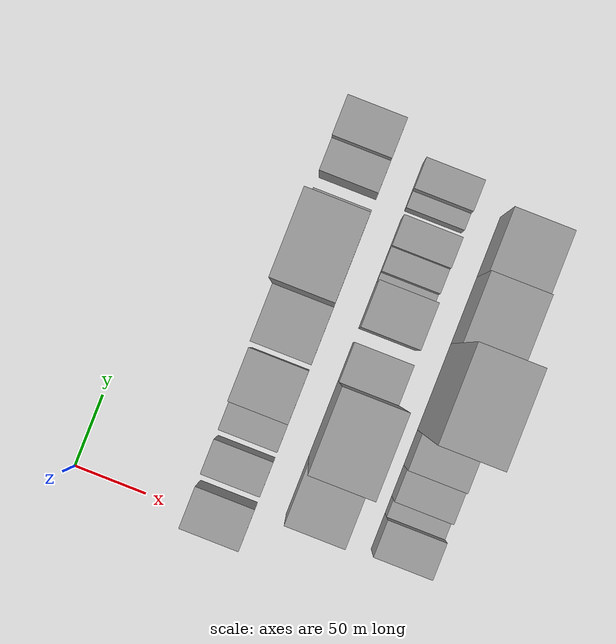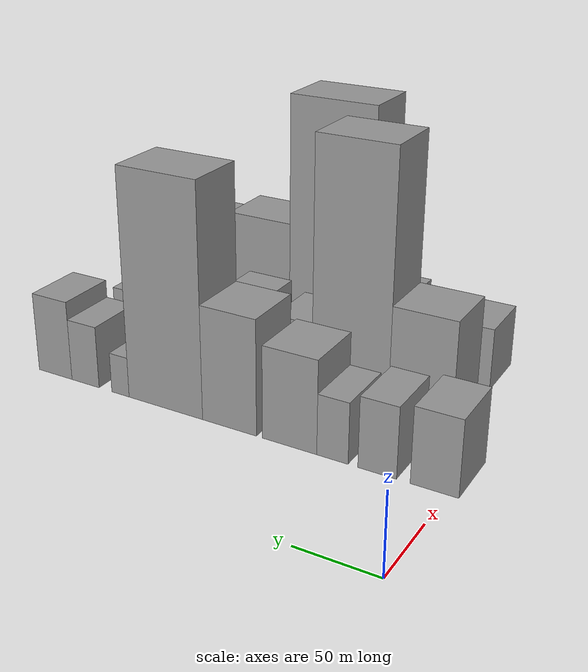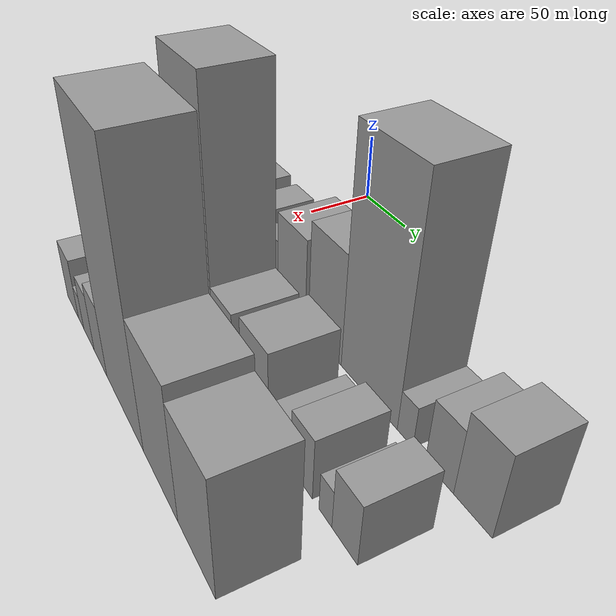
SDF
<sdf version="1.6">
 <world name="default">
  <model name="building_15">
   <static>1</static>
   <pose>100.0000 7.3285 0 0.000000 0.000000 0.000000</pose>
   <link name="link">
    <pose>0 0 24.00 0 0 0</pose>
    <collision name="collision"><geometry><box><size>40.0000 28.1079 48.0000</size></box></geometry></collision>
    <visual name="visual">
     <cast_shadows>0</cast_shadows>
     <geometry><box><size>40.0000 28.1079 48.0000</size></box></geometry>
     <material>
      <script>
       <uri>model://grey_wall/materials/scripts</uri>
       <uri>model://grey_wall/materials/textures</uri>
       <name>vrc/grey_wall</name>
      </script>
     </material>
    </visual>
   </link>
  </model>
  <model name="building_16">
   <static>1</static>
   <pose>100.0000 41.1134 0 0.000000 0.000000 0.000000</pose>
   <link name="link">
    <pose>0 0 22.50 0 0 0</pose>
    <collision name="collision"><geometry><box><size>40.0000 23.4620 45.0000</size></box></geometry></collision>
    <visual name="visual">
     <cast_shadows>0</cast_shadows>
     <geometry><box><size>40.0000 23.4620 45.0000</size></box></geometry>
     <material>
      <script>
       <uri>model://grey_wall/materials/scripts</uri>
       <uri>model://grey_wall/materials/textures</uri>
       <name>vrc/grey_wall</name>
      </script>
     </material>
    </visual>
   </link>
  </model>
  <model name="building_17">
   <static>1</static>
   <pose>100.0000 68.7270 0 0.000000 0.000000 0.000000</pose>
   <link name="link">
    <pose>0 0 19.50 0 0 0</pose>
    <collision name="collision"><geometry><box><size>40.0000 19.7653 39.0000</size></box></geometry></collision>
    <visual name="visual">
     <cast_shadows>0</cast_shadows>
     <geometry><box><size>40.0000 19.7653 39.0000</size></box></geometry>
     <material>
      <script>
       <uri>model://grey_wall/materials/scripts</uri>
       <uri>model://grey_wall/materials/textures</uri>
       <name>vrc/grey_wall</name>
      </script>
     </material>
    </visual>
   </link>
  </model>
  <model name="building_18">
   <static>1</static>
   <pose>100.0000 96.4455 0 0.000000 0.000000 0.000000</pose>
   <link name="link">
    <pose>0 0 30.00 0 0 0</pose>
    <collision name="collision"><geometry><box><size>40.0000 35.6717 60.0000</size></box></geometry></collision>
    <visual name="visual">
     <cast_shadows>0</cast_shadows>
     <geometry><box><size>40.0000 35.6717 60.0000</size></box></geometry>
     <material>
      <script>
       <uri>model://grey_wall/materials/scripts</uri>
       <uri>model://grey_wall/materials/textures</uri>
       <name>vrc/grey_wall</name>
      </script>
     </material>
    </visual>
   </link>
  </model>
  <model name="building_19">
   <static>1</static>
   <pose>100.0000 137.0450 0 0.000000 0.000000 0.000000</pose>
   <link name="link">
    <pose>0 0 37.50 0 0 0</pose>
    <collision name="collision"><geometry><box><size>40.0000 37.5273 75.0000</size></box></geometry></collision>
    <visual name="visual">
     <cast_shadows>0</cast_shadows>
     <geometry><box><size>40.0000 37.5273 75.0000</size></box></geometry>
     <material>
      <script>
       <uri>model://grey_wall/materials/scripts</uri>
       <uri>model://grey_wall/materials/textures</uri>
       <name>vrc/grey_wall</name>
      </script>
     </material>
    </visual>
   </link>
  </model>
  <model name="building_20">
   <static>1</static>
   <pose>100.0000 183.0743 0 0.000000 0.000000 0.000000</pose>
   <link name="link">
    <pose>0 0 75.00 0 0 0</pose>
    <collision name="collision"><geometry><box><size>40.0000 54.5314 150.0000</size></box></geometry></collision>
    <visual name="visual">
     <cast_shadows>0</cast_shadows>
     <geometry><box><size>40.0000 54.5314 150.0000</size></box></geometry>
     <material>
      <script>
       <uri>model://grey_wall/materials/scripts</uri>
       <uri>model://grey_wall/materials/textures</uri>
       <name>vrc/grey_wall</name>
      </script>
     </material>
    </visual>
   </link>
  </model>
  <model name="building_21">
   <static>1</static>
   <pose>100.0000 217.0555 0 0.000000 0.000000 0.000000</pose>
   <link name="link">
    <pose>0 0 13.50 0 0 0</pose>
    <collision name="collision"><geometry><box><size>40.0000 13.4309 27.0000</size></box></geometry></collision>
    <visual name="visual">
     <cast_shadows>0</cast_shadows>
     <geometry><box><size>40.0000 13.4309 27.0000</size></box></geometry>
     <material>
      <script>
       <uri>model://grey_wall/materials/scripts</uri>
       <uri>model://grey_wall/materials/textures</uri>
       <name>vrc/grey_wall</name>
      </script>
     </material>
    </visual>
   </link>
  </model>
  <model name="building_22">
   <static>1</static>
   <pose>100.0000 244.7112 0 0.000000 0.000000 0.000000</pose>
   <link name="link">
    <pose>0 0 21.00 0 0 0</pose>
    <collision name="collision"><geometry><box><size>40.0000 21.8806 42.0000</size></box></geometry></collision>
    <visual name="visual">
     <cast_shadows>0</cast_shadows>
     <geometry><box><size>40.0000 21.8806 42.0000</size></box></geometry>
     <material>
      <script>
       <uri>model://grey_wall/materials/scripts</uri>
       <uri>model://grey_wall/materials/textures</uri>
       <name>vrc/grey_wall</name>
      </script>
     </material>
    </visual>
   </link>
  </model>
  <model name="building_23">
   <static>1</static>
   <pose>100.0000 269.1983 0 0.000000 0.000000 0.000000</pose>
   <link name="link">
    <pose>0 0 27.00 0 0 0</pose>
    <collision name="collision"><geometry><box><size>40.0000 27.0935 54.0000</size></box></geometry></collision>
    <visual name="visual">
     <cast_shadows>0</cast_shadows>
     <geometry><box><size>40.0000 27.0935 54.0000</size></box></geometry>
     <material>
      <script>
       <uri>model://grey_wall/materials/scripts</uri>
       <uri>model://grey_wall/materials/textures</uri>
       <name>vrc/grey_wall</name>
      </script>
     </material>
    </visual>
   </link>
  </model>
  <model name="building_50">
   <static>1</static>
   <pose>160.0000 41.8229 0 0.000000 0.000000 0.000000</pose>
   <link name="link">
    <pose>0 0 36.00 0 0 0</pose>
    <collision name="collision"><geometry><box><size>40.0000 40.9516 72.0000</size></box></geometry></collision>
    <visual name="visual">
     <cast_shadows>0</cast_shadows>
     <geometry><box><size>40.0000 40.9516 72.0000</size></box></geometry>
     <material>
      <script>
       <uri>model://grey_wall/materials/scripts</uri>
       <uri>model://grey_wall/materials/textures</uri>
       <name>vrc/grey_wall</name>
      </script>
     </material>
    </visual>
   </link>
  </model>
  <model name="building_51">
   <static>1</static>
   <pose>160.0000 88.3106 0 0.000000 0.000000 0.000000</pose>
   <link name="link">
    <pose>0 0 84.00 0 0 0</pose>
    <collision name="collision"><geometry><box><size>40.0000 52.0237 168.0000</size></box></geometry></collision>
    <visual name="visual">
     <cast_shadows>0</cast_shadows>
     <geometry><box><size>40.0000 52.0237 168.0000</size></box></geometry>
     <material>
      <script>
       <uri>model://grey_wall/materials/scripts</uri>
       <uri>model://grey_wall/materials/textures</uri>
       <name>vrc/grey_wall</name>
      </script>
     </material>
    </visual>
   </link>
  </model>
  <model name="building_52">
   <static>1</static>
   <pose>160.0000 127.7563 0 0.000000 0.000000 0.000000</pose>
   <link name="link">
    <pose>0 0 24.00 0 0 0</pose>
    <collision name="collision"><geometry><box><size>40.0000 26.8676 48.0000</size></box></geometry></collision>
    <visual name="visual">
     <cast_shadows>0</cast_shadows>
     <geometry><box><size>40.0000 26.8676 48.0000</size></box></geometry>
     <material>
      <script>
       <uri>model://grey_wall/materials/scripts</uri>
       <uri>model://grey_wall/materials/textures</uri>
       <name>vrc/grey_wall</name>
      </script>
     </material>
    </visual>
   </link>
  </model>
  <model name="building_53">
   <static>1</static>
   <pose>160.0000 167.0010 0 0.000000 0.000000 0.000000</pose>
   <link name="link">
    <pose>0 0 27.00 0 0 0</pose>
    <collision name="collision"><geometry><box><size>40.0000 31.6218 54.0000</size></box></geometry></collision>
    <visual name="visual">
     <cast_shadows>0</cast_shadows>
     <geometry><box><size>40.0000 31.6218 54.0000</size></box></geometry>
     <material>
      <script>
       <uri>model://grey_wall/materials/scripts</uri>
       <uri>model://grey_wall/materials/textures</uri>
       <name>vrc/grey_wall</name>
      </script>
     </material>
    </visual>
   </link>
  </model>
  <model name="building_54">
   <static>1</static>
   <pose>160.0000 186.2964 0 0.000000 0.000000 0.000000</pose>
   <link name="link">
    <pose>0 0 7.50 0 0 0</pose>
    <collision name="collision"><geometry><box><size>40.0000 6.9691 15.0000</size></box></geometry></collision>
    <visual name="visual">
     <cast_shadows>0</cast_shadows>
     <geometry><box><size>40.0000 6.9691 15.0000</size></box></geometry>
     <material>
      <script>
       <uri>model://grey_wall/materials/scripts</uri>
       <uri>model://grey_wall/materials/textures</uri>
       <name>vrc/grey_wall</name>
      </script>
     </material>
    </visual>
   </link>
  </model>
  <model name="building_55">
   <static>1</static>
   <pose>160.0000 198.1976 0 0.000000 0.000000 0.000000</pose>
   <link name="link">
    <pose>0 0 15.00 0 0 0</pose>
    <collision name="collision"><geometry><box><size>40.0000 16.8332 30.0000</size></box></geometry></collision>
    <visual name="visual">
     <cast_shadows>0</cast_shadows>
     <geometry><box><size>40.0000 16.8332 30.0000</size></box></geometry>
     <material>
      <script>
       <uri>model://grey_wall/materials/scripts</uri>
       <uri>model://grey_wall/materials/textures</uri>
       <name>vrc/grey_wall</name>
      </script>
     </material>
    </visual>
   </link>
  </model>
  <model name="building_56">
   <static>1</static>
   <pose>160.0000 217.1379 0 0.000000 0.000000 0.000000</pose>
   <link name="link">
    <pose>0 0 19.50 0 0 0</pose>
    <collision name="collision"><geometry><box><size>40.0000 21.0475 39.0000</size></box></geometry></collision>
    <visual name="visual">
     <cast_shadows>0</cast_shadows>
     <geometry><box><size>40.0000 21.0475 39.0000</size></box></geometry>
     <material>
      <script>
       <uri>model://grey_wall/materials/scripts</uri>
       <uri>model://grey_wall/materials/textures</uri>
       <name>vrc/grey_wall</name>
      </script>
     </material>
    </visual>
   </link>
  </model>
  <model name="building_57">
   <static>1</static>
   <pose>160.0000 239.4100 0 0.000000 0.000000 0.000000</pose>
   <link name="link">
    <pose>0 0 12.00 0 0 0</pose>
    <collision name="collision"><geometry><box><size>40.0000 11.4966 24.0000</size></box></geometry></collision>
    <visual name="visual">
     <cast_shadows>0</cast_shadows>
     <geometry><box><size>40.0000 11.4966 24.0000</size></box></geometry>
     <material>
      <script>
       <uri>model://grey_wall/materials/scripts</uri>
       <uri>model://grey_wall/materials/textures</uri>
       <name>vrc/grey_wall</name>
      </script>
     </material>
    </visual>
   </link>
  </model>
  <model name="building_58">
   <static>1</static>
   <pose>160.0000 255.7840 0 0.000000 0.000000 0.000000</pose>
   <link name="link">
    <pose>0 0 19.50 0 0 0</pose>
    <collision name="collision"><geometry><box><size>40.0000 21.2515 39.0000</size></box></geometry></collision>
    <visual name="visual">
     <cast_shadows>0</cast_shadows>
     <geometry><box><size>40.0000 21.2515 39.0000</size></box></geometry>
     <material>
      <script>
       <uri>model://grey_wall/materials/scripts</uri>
       <uri>model://grey_wall/materials/textures</uri>
       <name>vrc/grey_wall</name>
      </script>
     </material>
    </visual>
   </link>
  </model>
  <model name="building_87">
   <static>1</static>
   <pose>220.0000 32.5463 0 0.000000 0.000000 0.000000</pose>
   <link name="link">
    <pose>0 0 21.00 0 0 0</pose>
    <collision name="collision"><geometry><box><size>40.0000 25.0198 42.0000</size></box></geometry></collision>
    <visual name="visual">
     <cast_shadows>0</cast_shadows>
     <geometry><box><size>40.0000 25.0198 42.0000</size></box></geometry>
     <material>
      <script>
       <uri>model://grey_wall/materials/scripts</uri>
       <uri>model://grey_wall/materials/textures</uri>
       <name>vrc/grey_wall</name>
      </script>
     </material>
    </visual>
   </link>
  </model>
  <model name="building_88">
   <static>1</static>
   <pose>220.0000 51.0381 0 0.000000 0.000000 0.000000</pose>
   <link name="link">
    <pose>0 0 12.00 0 0 0</pose>
    <collision name="collision"><geometry><box><size>40.0000 11.9637 24.0000</size></box></geometry></collision>
    <visual name="visual">
     <cast_shadows>0</cast_shadows>
     <geometry><box><size>40.0000 11.9637 24.0000</size></box></geometry>
     <material>
      <script>
       <uri>model://grey_wall/materials/scripts</uri>
       <uri>model://grey_wall/materials/textures</uri>
       <name>vrc/grey_wall</name>
      </script>
     </material>
    </visual>
   </link>
  </model>
  <model name="building_89">
   <static>1</static>
   <pose>220.0000 67.9119 0 0.000000 0.000000 0.000000</pose>
   <link name="link">
    <pose>0 0 19.50 0 0 0</pose>
    <collision name="collision"><geometry><box><size>40.0000 21.7838 39.0000</size></box></geometry></collision>
    <visual name="visual">
     <cast_shadows>0</cast_shadows>
     <geometry><box><size>40.0000 21.7838 39.0000</size></box></geometry>
     <material>
      <script>
       <uri>model://grey_wall/materials/scripts</uri>
       <uri>model://grey_wall/materials/textures</uri>
       <name>vrc/grey_wall</name>
      </script>
     </material>
    </visual>
   </link>
  </model>
  <model name="building_90">
   <static>1</static>
   <pose>220.0000 91.1208 0 0.000000 0.000000 0.000000</pose>
   <link name="link">
    <pose>0 0 24.00 0 0 0</pose>
    <collision name="collision"><geometry><box><size>40.0000 24.6341 48.0000</size></box></geometry></collision>
    <visual name="visual">
     <cast_shadows>0</cast_shadows>
     <geometry><box><size>40.0000 24.6341 48.0000</size></box></geometry>
     <material>
      <script>
       <uri>model://grey_wall/materials/scripts</uri>
       <uri>model://grey_wall/materials/textures</uri>
       <name>vrc/grey_wall</name>
      </script>
     </material>
    </visual>
   </link>
  </model>
  <model name="building_91">
   <static>1</static>
   <pose>220.0000 133.7132 0 0.000000 0.000000 0.000000</pose>
   <link name="link">
    <pose>0 0 85.50 0 0 0</pose>
    <collision name="collision"><geometry><box><size>40.0000 60.5506 171.0000</size></box></geometry></collision>
    <visual name="visual">
     <cast_shadows>0</cast_shadows>
     <geometry><box><size>40.0000 60.5506 171.0000</size></box></geometry>
     <material>
      <script>
       <uri>model://grey_wall/materials/scripts</uri>
       <uri>model://grey_wall/materials/textures</uri>
       <name>vrc/grey_wall</name>
      </script>
     </material>
    </visual>
   </link>
  </model>
  <model name="building_92">
   <static>1</static>
   <pose>220.0000 187.2578 0 0.000000 0.000000 0.000000</pose>
   <link name="link">
    <pose>0 0 42.00 0 0 0</pose>
    <collision name="collision"><geometry><box><size>40.0000 46.5386 84.0000</size></box></geometry></collision>
    <visual name="visual">
     <cast_shadows>0</cast_shadows>
     <geometry><box><size>40.0000 46.5386 84.0000</size></box></geometry>
     <material>
      <script>
       <uri>model://grey_wall/materials/scripts</uri>
       <uri>model://grey_wall/materials/textures</uri>
       <name>vrc/grey_wall</name>
      </script>
     </material>
    </visual>
   </link>
  </model>
  <model name="building_93">
   <static>1</static>
   <pose>220.0000 231.6188 0 0.000000 0.000000 0.000000</pose>
   <link name="link">
    <pose>0 0 37.50 0 0 0</pose>
    <collision name="collision"><geometry><box><size>40.0000 42.1835 75.0000</size></box></geometry></collision>
    <visual name="visual">
     <cast_shadows>0</cast_shadows>
     <geometry><box><size>40.0000 42.1835 75.0000</size></box></geometry>
     <material>
      <script>
       <uri>model://grey_wall/materials/scripts</uri>
       <uri>model://grey_wall/materials/textures</uri>
       <name>vrc/grey_wall</name>
      </script>
     </material>
    </visual>
   </link>
  </model>
 </world>
</sdf>
